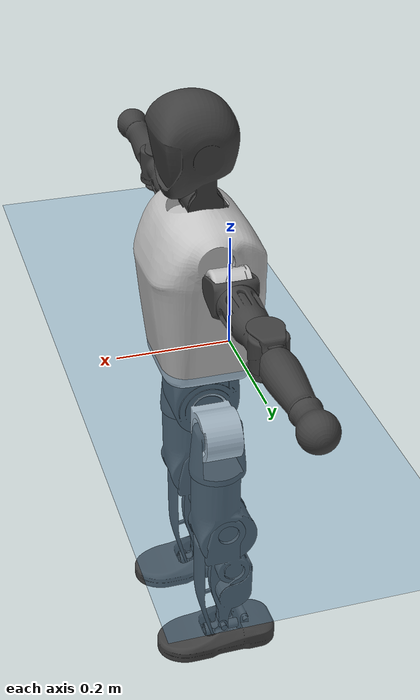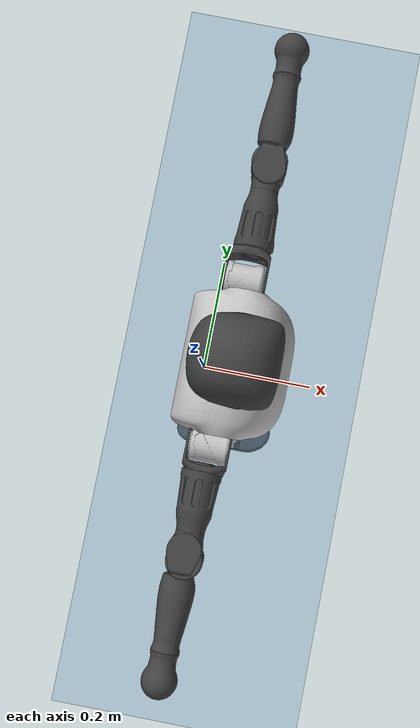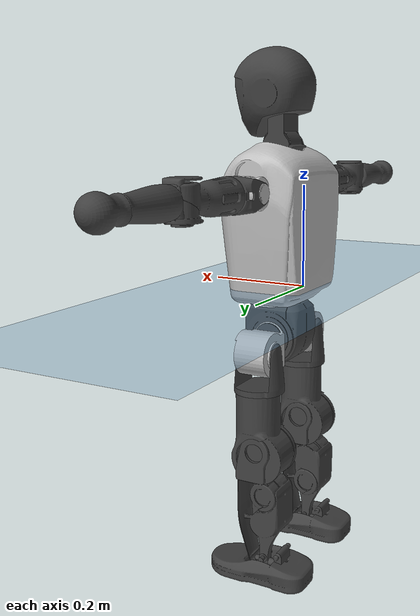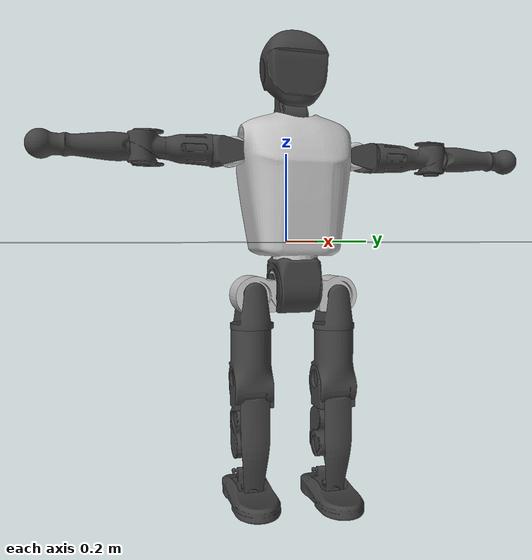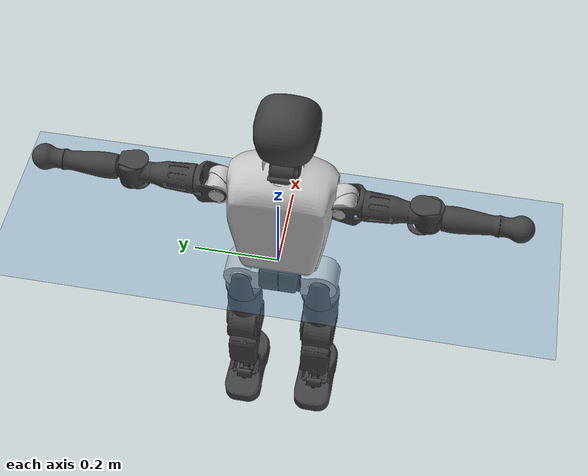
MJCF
<mujoco model="T1">
  <compiler angle="radian" assetdir="assets" balanceinertia="true" inertiafromgeom="false"/>

  <option timestep="0.005" density="1.2" viscosity="2e-05"/>

  <size nkey="1"/>

  <visual>
    <quality shadowsize="8192"/>
    <map shadowclip="0.5"/>
  </visual>

  <default>
    <default class="/">
      <joint armature="0.01" damping="0.01" frictionloss="0.1"/>
      <geom contype="0" conaffinity="0" group="1" solref="-1000 -80"/>
      <site size="0.01 0.005 0.005" group="5"/>
      <general forcelimited="true" biastype="affine" gainprm="25" biasprm="0 -25 -0.6"/>
      <default class="t1">
        <geom rgba="0.25 0.25 0.25 1"/>
        <default class="visual">
          <geom type="mesh" group="2"/>
        </default>
        <default class="collision">
          <geom group="3"/>
        </default>
        <default class="foot">
          <geom size="0.1115 0.05 0.015" type="box" condim="6" group="4" priority="1" solimp="0.015 1 0.015"/>
        </default>
        <default class="reward_collision_sphere">
          <geom group="5" rgba="1 0 0 1"/>
        </default>
      </default>
    </default>
  </default>

  <asset>
    <texture type="skybox" colorspace="auto" name="//unnamed_texture_0" builtin="gradient" rgb1="0.95 0.95 0.95" rgb2="0.95 0.95 0.95" width="100" height="600"/>
    <texture type="2d" colorspace="auto" name="texplane" builtin="checker" rgb1="0.345 0.575 0.748" rgb2="0.345 0.575 0.748" markrgb="1 1 1" width="512" height="512"/>
    <material name="MatPlane" class="/" texture="texplane" texuniform="true" texrepeat="2 2" specular="0.9"/>
    <mesh name="Trunk" class="/" file="Trunk.stl"/>
    <mesh name="H1" class="/" file="H1.stl"/>
    <mesh name="H2" class="/" file="H2.stl"/>
    <mesh name="AL1" class="/" file="AL1.stl"/>
    <mesh name="AL2" class="/" file="AL2.stl"/>
    <mesh name="AL3" class="/" file="AL3.stl"/>
    <mesh name="left_hand_link" class="/" file="left_hand_link.stl"/>
    <mesh name="AR1" class="/" file="AR1.stl"/>
    <mesh name="AR2" class="/" file="AR2.stl"/>
    <mesh name="AR3" class="/" file="AR3.stl"/>
    <mesh name="right_hand_link" class="/" file="right_hand_link.stl"/>
    <mesh name="Waist" class="/" file="Waist.stl"/>
    <mesh name="Hip_Pitch_Left" class="/" file="Hip_Pitch_Left.stl"/>
    <mesh name="Hip_Roll_Left" class="/" file="Hip_Roll_Left.stl"/>
    <mesh name="Hip_Yaw_Left" class="/" file="Hip_Yaw_Left.stl"/>
    <mesh name="Shank_Left" class="/" file="Shank_Left.stl"/>
    <mesh name="Ankle_Cross_Left" class="/" file="Ankle_Cross_Left.stl"/>
    <mesh name="left_foot_link" class="/" file="left_foot_link.stl"/>
    <mesh name="Hip_Pitch_Right" class="/" file="Hip_Pitch_Right.stl"/>
    <mesh name="Hip_Roll_Right" class="/" file="Hip_Roll_Right.stl"/>
    <mesh name="Hip_Yaw_Right" class="/" file="Hip_Yaw_Right.stl"/>
    <mesh name="Shank_Right" class="/" file="Shank_Right.stl"/>
    <mesh name="Ankle_Cross_Right" class="/" file="Ankle_Cross_Right.stl"/>
    <mesh name="right_foot_link" class="/" file="right_foot_link.stl"/>
  </asset>

  <worldbody>
    <geom name="floor" class="/" size="100 100 0.125" type="plane" group="0" material="MatPlane"/>
    <light name="toplight_shadow" class="/" pos="0 0 5" dir="0.0990148 0.0990148 -0.990148" type="directional" ambient="0.04 0.04 0.04" diffuse="0.55 0.55 0.55" specular="0.12 0.12 0.12"/>
    <light name="toplight_fill" class="/" pos="0 0 5" dir="0.0990148 0.0990148 -0.990148" type="directional" castshadow="false" ambient="0.04 0.04 0.04" diffuse="0.3 0.3 0.3" specular="0.08 0.08 0.08"/>
    <body name="trunk" childclass="t1" pos="0.0002331 -3.11464e-05 0.00277099" quat="1 0.00027085 -0.0004048 -4.95884e-05">
      <inertial pos="0.0450225 0.000558306 0.0924734" quat="0.999983 0.00477997 -0.00291805 -0.00159243" mass="7.29837" diaginertia="0.03319 0.0439468 0.0278442"/>
      <joint name="//unnamed_joint_0" type="free" armature="0" damping="0" frictionloss="0"/>
      <geom name="//unnamed_geom_1" class="visual" rgba="0.76 0.76 0.76 1" mesh="Trunk"/>
      <geom name="//unnamed_geom_2" class="collision" size="0.064901 0.0865347 0.129802" pos="0.049326 0 0.105299" type="box"/>
      <geom name="//unnamed_geom_3" class="reward_collision_sphere" size="0.0995149" pos="0.049326 0 0.0877495"/>
      <geom name="//unnamed_geom_4" class="reward_collision_sphere" size="0.0129802" pos="0.049326 0.0761979 0"/>
      <geom name="//unnamed_geom_5" class="reward_collision_sphere" size="0.0129802" pos="0.049326 -0.0761979 0"/>
      <geom name="//unnamed_geom_6" class="reward_collision_sphere" size="0.0129802" pos="0.049326 0.0959197 0.157949"/>
      <geom name="//unnamed_geom_7" class="reward_collision_sphere" size="0.0129802" pos="0.049326 -0.0959197 0.157949"/>
      <site name="imu" pos="0.0113383 -0.0136471 0.00480877" size="0.00865347"/>
      <camera name="track" pos="0 -1.79289 0" quat="0.707107 0.707107 0 0" mode="trackcom"/>
      <camera name="ego_camera" pos="0.100296 0 0.368548" quat="-0.5 -0.5 0.5 0.5"/>
      <body name="H1" pos="0.0493223 -0.00254392 0.212552" quat="1 0.000289357 -2.9935e-05 0.000859881">
        <inertial pos="-0.00163249 -0.000611441 0.051301" quat="0.763804 -0.0135259 0.00221859 0.645302" mass="0.287282" diaginertia="9.42609e-05 0.000129154 8.0922e-05"/>
        <joint name="AAHead_yaw" pos="0 0 0" axis="-0.000726471 -0.00100123 0.999999" stiffness="0.0120577" range="-1.55375 1.61338" armature="0.00845187" damping="0.00748453" frictionloss="0.0879141"/>
        <geom name="//unnamed_geom_8" class="visual" mesh="H1"/>
        <body name="H2" pos="-0.000297959 -0.00271632 0.0550832" quat="1 -9.3459e-05 9.34248e-05 0.000129845">
          <inertial pos="0.00805506 0.00345326 0.0887712" quat="0.988329 0.107625 -0.0746828 -0.0777541" mass="0.420888" diaginertia="0.000770552 0.0011133 0.000909366"/>
          <joint name="Head_pitch" pos="0 0 0" axis="0.00130428 -0.999998 -0.00174642" stiffness="0.00469862" range="-1.22611 0.397759" armature="0.00747244" damping="0" frictionloss="0.0866192"/>
          <geom name="//unnamed_geom_9" class="visual" mesh="H2"/>
          <geom name="//unnamed_geom_10" class="collision" size="0.0692277" pos="0.008221 0 0.0965244"/>
          <geom name="//unnamed_geom_11" class="reward_collision_sphere" size="0.0778812" pos="0.016442 0 0.0877495"/>
        </body>
      </body>
      <body name="AL1" pos="0.046929 0.0959971 0.190479" quat="1 -0.000284657 0.000337393 0.000158175">
        <inertial pos="0.000570917 0.0415699 0.00252513" quat="0.507406 0.48835 -0.505117 0.498909" mass="0.348918" diaginertia="0.000523605 0.000756066 0.000155429"/>
        <joint name="Left_Shoulder_Pitch" pos="0 0 0" axis="-0.00102839 0.999997 0.00208152" range="-3.36308 1.16964" armature="0.00827187" damping="0.00118676" frictionloss="0.0878505"/>
        <geom name="//unnamed_geom_12" class="visual" rgba="0.76 0.76 0.76 1" mesh="AL1"/>
        <body name="AL2" pos="0.00131232 0.0456807 -0.000703123" quat="0.999999 -0.00105666 0.00049167 0.000373545">
          <inertial pos="0.00440329 0.0334187 -0.00285627" quat="0.488124 0.510353 -0.492293 0.508844" mass="0.109794" diaginertia="0.000156747 0.00021353 9.59783e-05"/>
          <joint name="Left_Shoulder_Roll" pos="0 0 0" axis="-0.999999 -0.000415333 -0.00139067" range="-1.62179 1.75395" armature="0.00937757" damping="0" frictionloss="0.0843362"/>
          <geom name="//unnamed_geom_13" class="visual" mesh="AL2"/>
          <body name="AL3" pos="0.00372372 0.0575225 0.000156888" quat="1 0.000579274 0.000709806 -0.000187556">
            <inertial pos="-0.0016279 0.0757892 0.00027677" quat="0.716007 0.698088 0.0020239 0.00180435" mass="0.681338" diaginertia="0.00502242 0.00763518 0.000327049"/>
            <joint name="Left_Elbow_Pitch" pos="0 0 0" axis="-0.00143901 -0.999998 -0.00118485" stiffness="0.00175737" range="-2.30124 2.28038" armature="0.0087342" damping="0.00995509" frictionloss="0.088826"/>
            <geom name="//unnamed_geom_14" class="visual" mesh="AL3"/>
            <geom name="//unnamed_geom_15" class="collision" size="0.0259604 0.064901" pos="0 0.0448223 0" quat="0.707105 0.707108 0 0" type="cylinder"/>
            <geom name="//unnamed_geom_16" class="reward_collision_sphere" size="0.0311525"/>
            <body name="left_hand_link" pos="0.000682755 0.134517 0.00352135" quat="0.999999 -0.000161582 0.00124179 -0.000391884">
              <inertial pos="0.000122362 0.0971094 -0.00212511" quat="0.699902 0.714195 -0.00195291 -0.00764157" mass="0.206116" diaginertia="0.00304888 0.0046009 0.000106832"/>
              <joint name="Left_Elbow_Yaw" pos="0 0 0" axis="-0.00743272 0.0143563 0.999869" stiffness="0.000652993" range="-2.44992 0.0512665" armature="0.0087209" damping="0.00102245" frictionloss="0.0963417"/>
              <geom name="//unnamed_geom_17" class="visual" mesh="left_hand_link"/>
              <geom name="//unnamed_geom_18" class="collision" size="0.0259604 0.0757178" pos="0 0.116538 0" quat="0.707105 0.707108 0 0" type="cylinder"/>
              <geom name="//unnamed_geom_19" class="reward_collision_sphere" size="0.0432673"/>
              <geom name="//unnamed_geom_20" class="reward_collision_sphere" size="0.0302871" pos="0 0.098609 0"/>
              <geom name="//unnamed_geom_21" class="reward_collision_sphere" size="0.0302871" pos="0 0.192736 0"/>
            </body>
          </body>
        </body>
      </body>
      <body name="AR1" pos="0.0443652 -0.0916807 0.191346" quat="1 -0.000447007 0.000375504 -0.000178797">
        <inertial pos="-0.00153902 -0.0398904 -0.00135487" quat="0.50269 0.495022 -0.504624 0.497605" mass="0.35395" diaginertia="0.000518934 0.000762732 0.000153659"/>
        <joint name="Right_Shoulder_Pitch" pos="0 0 0" axis="0.00769532 -0.999959 -0.00477285" stiffness="0.0147839" range="-1.17701 3.33192" armature="0.00859204" damping="0.021462" frictionloss="0.0874684"/>
        <geom name="//unnamed_geom_22" class="visual" rgba="0.76 0.76 0.76 1" mesh="AR1"/>
        <body name="AR2" pos="-0.00268548 -0.0386636 0.000354437" quat="1 0.000485474 9.14989e-05 -0.00084538">
          <inertial pos="0.000722761 -0.03315 -0.00234837" quat="0.514759 0.481918 -0.507879 0.494809" mass="0.103252" diaginertia="0.000146909 0.000196355 9.31541e-05"/>
          <joint name="Right_Shoulder_Roll" pos="0 0 0" axis="-0.999962 0.00452894 0.00746787" stiffness="0.0116318" range="-1.70495 1.5198" armature="0.00885114" damping="0.00777296" frictionloss="0.0750197"/>
          <geom name="//unnamed_geom_23" class="visual" mesh="AR2"/>
          <body name="AR3" pos="-0.00187095 -0.0519596 0.00254888" quat="1 0.000371052 -0.000320304 5.24569e-06">
            <inertial pos="-0.000531419 -0.076078 0.000294352" quat="0.714131 0.699994 0.00489681 0.000389647" mass="0.645898" diaginertia="0.004719 0.00762361 0.00032505"/>
            <joint name="Right_Elbow_Pitch" pos="0 0 0" axis="0.000632413 0.999999 -0.000880267" stiffness="0.0109246" range="-2.2723 2.26" armature="0.00909655" damping="0.0170365" frictionloss="0.097404"/>
            <geom name="//unnamed_geom_24" class="visual" mesh="AR3"/>
            <geom name="//unnamed_geom_25" class="collision" size="0.0259604 0.064901" pos="0 -0.0448223 0" quat="0.707105 0.707108 0 0" type="cylinder"/>
            <geom name="//unnamed_geom_26" class="reward_collision_sphere" size="0.0311525"/>
            <body name="right_hand_link" pos="-0.00284639 -0.130176 -0.000467446" quat="0.999999 -0.000676463 -0.000662569 0.000461591">
              <inertial pos="-0.000871025 -0.0979927 0.00325679" quat="0.712004 0.702096 -0.0104791 0.00112147" mass="0.203038" diaginertia="0.00288236 0.00459517 0.000108937"/>
              <joint name="Right_Elbow_Yaw" pos="0 0 0" axis="-0.00380931 0.00111542 0.999992" stiffness="0.0041472" range="-0.0561327 2.4229" armature="0.00977275" damping="0.0105667" frictionloss="0.08727"/>
              <geom name="//unnamed_geom_27" class="visual" mesh="right_hand_link"/>
              <geom name="//unnamed_geom_28" class="collision" size="0.0259604 0.0757178" pos="0 -0.116538 0" quat="0.707105 0.707108 0 0" type="cylinder"/>
              <geom name="//unnamed_geom_29" class="reward_collision_sphere" size="0.0432673"/>
              <geom name="//unnamed_geom_30" class="reward_collision_sphere" size="0.0302871" pos="0 -0.098609 0"/>
              <geom name="//unnamed_geom_31" class="reward_collision_sphere" size="0.0302871" pos="0 -0.192736 0"/>
            </body>
          </body>
        </body>
      </body>
      <body name="Waist" pos="0.0518273 -0.000134452 -0.103961" quat="1 3.00762e-05 -5.02819e-06 -2.39723e-07">
        <inertial pos="0.00392121 -0.000878382 0.00599634" quat="0.982866 -0.00299348 -0.184197 0.00599214" mass="1.66419" diaginertia="0.00194415 0.00286692 0.00235075"/>
        <joint name="Waist" pos="0 0 0" axis="9.49971e-05 -0.000876647 1" stiffness="0.00103543" range="-1.52586 1.5909" armature="0.00757352" damping="0.0136721" frictionloss="0.0906604"/>
        <geom name="//unnamed_geom_32" class="visual" mesh="Waist"/>
        <body name="Hip_Pitch_Left" pos="-0.00159966 0.0971397 -0.00101619" quat="0.999999 -0.000251754 -0.000239162 0.00107479">
          <inertial pos="-0.000945349 -0.00435998 -0.0158746" quat="0.975123 0.221138 0.0152684 -0.00044297" mass="0.648874" diaginertia="0.000662047 0.000840873 0.000635794"/>
          <joint name="Left_Hip_Pitch" pos="0 0 0" axis="-0.00109479 0.999999 -0.000161496" stiffness="0.0111376" range="-1.80831 1.62165" armature="0.0087016" damping="0.0178171" frictionloss="0.0863117"/>
          <geom name="//unnamed_geom_33" class="visual" rgba="0.76 0.76 0.76 1" mesh="Hip_Pitch_Left"/>
          <body name="Hip_Roll_Left" pos="0.00165862 -0.000595386 -0.0202647" quat="0.999999 -0.000838295 0.00040813 0.000634589">
            <inertial pos="-0.000132208 -0.000344604 -0.0471088" quat="0.705988 -0.00501586 -0.00464266 0.708191" mass="0.249545" diaginertia="0.000660554 0.000852037 0.000259596"/>
            <joint name="Left_Hip_Roll" pos="0 0 0" axis="-1 0.000787885 0.000266414" range="-1.57346 0.203504" armature="0.00848404" damping="0.0164939" frictionloss="0.098541"/>
            <geom name="//unnamed_geom_34" class="visual" mesh="Hip_Roll_Left"/>
            <geom name="//unnamed_geom_35" class="reward_collision_sphere" size="0.0475941"/>
            <body name="Hip_Yaw_Left" pos="0.000483675 0.000223811 -0.0740344" quat="0.999999 0.00107726 0.000121261 -0.000178526">
              <inertial pos="-0.00529114 -0.000874789 -0.0785966" quat="0.700181 -0.0279889 -0.0226834 0.713055" mass="1.37751" diaginertia="0.00954246 0.0142579 0.00138115"/>
              <joint name="Left_Hip_Yaw" pos="0 0 0" axis="-0.00317241 0.0113533 -0.999931" range="-0.999974 0.979003" armature="0.00843041" damping="0.00912422" frictionloss="0.0862318"/>
              <geom name="//unnamed_geom_36" class="visual" mesh="Hip_Yaw_Left"/>
              <geom name="//unnamed_geom_37" class="collision" size="0.0432673 0.0692277" type="cylinder"/>
              <body name="Shank_Left" pos="-0.0118757 -0.000401255 -0.11987" quat="1 -0.000446802 -0.000246734 0.000718002">
                <inertial pos="-0.00519182 0.000990472 -0.109982" quat="0.997987 0.00453277 -0.0319537 0.054589" mass="1.14633" diaginertia="0.0128634 0.0208583 0.000986421"/>
                <joint name="Left_Knee_Pitch" pos="0 0 0" axis="-0.00182647 0.999997 0.00146631" stiffness="0.00426236" range="0.0128115 2.35143" armature="0.00866877" damping="0.0162402" frictionloss="0.0986061"/>
                <geom name="//unnamed_geom_38" class="visual" mesh="Shank_Left"/>
                <geom name="//unnamed_geom_39" class="collision" size="0.0432673 0.064901" pos="0 0 -0.105299" type="cylinder"/>
                <geom name="//unnamed_geom_40" class="reward_collision_sphere" size="0.0562475"/>
                <body name="Ankle_Cross_Left" pos="-0.00151898 -0.00114691 -0.247201" quat="0.999999 0.000720276 0.000786777 -3.06277e-05">
                  <inertial pos="-0.00188976 0.00179058 -0.0092686" quat="0.441342 0.550223 0.551907 0.444827" mass="0.0482486" diaginertia="1.1643e-05 1.48668e-05 5.93484e-06"/>
                  <joint name="Left_Ankle_Pitch" pos="0 0 0" axis="-0.0105148 0.999945 -0.000437145" range="-0.910191 0.392603" armature="0.00780551" damping="0.0144002" frictionloss="0.0984172"/>
                  <geom name="//unnamed_geom_41" class="visual" mesh="Ankle_Cross_Left"/>
                  <body name="left_foot_link" pos="0.00212073 -0.000372728 -0.0138999" quat="1 -6.28841e-05 0.000260554 -4.46435e-05">
                    <inertial pos="-0.000519812 -0.00259039 -0.00865451" quat="6.58768e-05 0.621511 -0.000465282 0.783406" mass="0.436864" diaginertia="0.00104987 0.00138759 0.00114438"/>
                    <joint name="Left_Ankle_Roll" pos="0 0 0" axis="-0.999987 0.00451837 -0.00235605" range="-0.488175 0.422323" armature="0.00856374" damping="0.00701492" frictionloss="0.0821646"/>
                    <geom name="//unnamed_geom_42" class="visual" mesh="left_foot_link"/>
                    <geom name="left_foot" class="foot" size="0.0982626 0.0426511 0.0142632" pos="0.008221 0 -0.0131624"/>
                    <geom name="//unnamed_geom_44" class="reward_collision_sphere" size="0.044998" pos="0.008221 0 -0.0131624"/>
                    <geom name="//unnamed_geom_45" class="reward_collision_sphere" size="0.0259604" pos="0.0780995 -0.0206182 -0.0131624"/>
                    <geom name="//unnamed_geom_46" class="reward_collision_sphere" size="0.0259604" pos="-0.057547 -0.0206182 -0.0131624"/>
                    <site name="left_foot" class="foot" pos="0.008221 0 -0.0131624" size="0.00865347"/>
                  </body>
                </body>
              </body>
            </body>
          </body>
        </body>
        <body name="Hip_Pitch_Right" pos="-0.000918382 -0.0961721 0.00181622" quat="0.999999 0.000633679 0.000751428 -0.000836608">
          <inertial pos="0.000401783 0.00693209 -0.0130853" quat="0.972345 -0.232937 0.0144264 0.00882047" mass="0.659466" diaginertia="0.000675885 0.000848147 0.00067053"/>
          <joint name="Right_Hip_Pitch" pos="0 0 0" axis="0.0132007 -0.999911 0.00204334" range="-1.58091 1.81461" armature="0.00976316" damping="0.0102236" frictionloss="0.0953961"/>
          <geom name="//unnamed_geom_47" class="visual" rgba="0.76 0.76 0.76 1" mesh="Hip_Pitch_Right"/>
          <body name="Hip_Roll_Right" pos="0.000964763 -0.0013605 -0.0150397" quat="0.999999 0.000699721 0.000129549 -0.000841139">
            <inertial pos="0.00355124 1.32554e-05 -0.0495426" quat="0.699612 0.00248694 -0.00286469 0.714513" mass="0.240811" diaginertia="0.000611816 0.000844399 0.000257672"/>
            <joint name="Right_Hip_Roll" pos="0 0 0" axis="-0.999992 -0.00202611 -0.00334562" stiffness="0.00900457" range="-0.189433 1.62896" armature="0.00825435" damping="0.00531782" frictionloss="0.0859064"/>
            <geom name="//unnamed_geom_48" class="visual" mesh="Hip_Roll_Right"/>
            <geom name="//unnamed_geom_49" class="reward_collision_sphere" size="0.0475941"/>
            <body name="Hip_Yaw_Right" pos="-7.00202e-05 -0.00257891 -0.0713015" quat="0.999999 0.000227849 0.00114573 -0.000887243">
              <inertial pos="-0.00294384 0.000628423 -0.0782212" quat="0.722878 -0.0314757 -0.0362449 0.689306" mass="1.46697" diaginertia="0.0103359 0.015559 0.00142496"/>
              <joint name="Right_Hip_Yaw" pos="0 0 0" axis="0.0034609 0.00812525 -0.999961" range="-1.01774 0.963744" armature="0.00882309" damping="0.00531972" frictionloss="0.0750475"/>
              <geom name="//unnamed_geom_50" class="visual" mesh="Hip_Yaw_Right"/>
              <geom name="//unnamed_geom_51" class="collision" size="0.0432673 0.0692277" type="cylinder"/>
              <body name="Shank_Right" pos="-0.0140364 0.00217021 -0.118753" quat="0.999999 0.000978433 0.000800929 -0.000117981">
                <inertial pos="-0.00213832 0.00170978 -0.106529" quat="0.999253 0.00139405 -0.0237207 -0.0304678" mass="1.20848" diaginertia="0.0132149 0.0198018 0.00100065"/>
                <joint name="Right_Knee_Pitch" pos="0 0 0" axis="0.00123992 -0.999991 -0.00416982" stiffness="0.0084011" range="-2.33507 -0.0160036" armature="0.00828586" damping="0.0196625" frictionloss="0.0919559"/>
                <geom name="//unnamed_geom_52" class="visual" mesh="Shank_Right"/>
                <geom name="//unnamed_geom_53" class="collision" size="0.0432673 0.064901" pos="0 0 -0.105299" type="cylinder"/>
                <geom name="//unnamed_geom_54" class="reward_collision_sphere" size="0.0562475"/>
                <body name="Ankle_Cross_Right" pos="-0.00159528 -0.00174659 -0.247894" quat="0.999999 0.00126511 0.000354002 -0.00052039">
                  <inertial pos="-0.00296516 0.000506636 -0.00704493" quat="0.439083 0.551174 0.550735 0.44733" mass="0.0441831" diaginertia="1.05286e-05 1.43449e-05 5.781e-06"/>
                  <joint name="Right_Ankle_Pitch" pos="0 0 0" axis="-0.0108889 -0.999937 -0.00275497" range="-0.352481 0.817628" armature="0.00984946" damping="0" frictionloss="0.0769762"/>
                  <geom name="//unnamed_geom_55" class="visual" mesh="Ankle_Cross_Right"/>
                  <body name="right_foot_link" pos="0.00232305 -0.00146059 -0.0080399" quat="1 -0.000638962 -0.00055001 0.000522258">
                    <inertial pos="-0.000436047 0.000272405 -0.0107209" quat="-0.00419211 0.620849 -0.00330999 0.783912" mass="0.464723" diaginertia="0.000992415 0.00137894 0.00113039"/>
                    <joint name="Right_Ankle_Roll" pos="0 0 0" axis="-0.999891 0.00768028 -0.0126113" range="-0.395047 0.47164" armature="0.00736512" damping="0.00520443" frictionloss="0.0828056"/>
                    <geom name="//unnamed_geom_56" class="visual" mesh="right_foot_link"/>
                    <geom name="right_foot" class="foot" size="0.095939 0.0441448 0.0134392" pos="0.008221 0 -0.0131624"/>
                    <geom name="//unnamed_geom_58" class="reward_collision_sphere" size="0.0346139"/>
                    <geom name="//unnamed_geom_59" class="reward_collision_sphere" size="0.0259604" pos="0.008221 0 -0.0131624"/>
                    <geom name="//unnamed_geom_60" class="reward_collision_sphere" size="0.0259604" pos="0.0780995 0.0206182 -0.0131624"/>
                    <geom name="//unnamed_geom_61" class="reward_collision_sphere" size="0.0259604" pos="-0.057547 0.0206182 -0.0131624"/>
                    <site name="right_foot" class="foot" pos="0.008221 0 -0.0131624" size="0.00865347"/>
                  </body>
                </body>
              </body>
            </body>
          </body>
        </body>
      </body>
    </body>
  </worldbody>

  <contact>
    <pair class="/" geom1="floor" geom2="left_foot" name="//unnamed_contact_0"/>
    <pair class="/" geom1="floor" geom2="right_foot" name="//unnamed_contact_1"/>
  </contact>

  <actuator>
    <general name="AAHead_yaw" class="/" joint="AAHead_yaw" forcerange="-5.71069 5.71069" gainprm="23.4312" biasprm="0 -23.4312 -0.52565"/>
    <general name="Head_pitch" class="/" joint="Head_pitch" forcerange="-5.81811 5.81811" gainprm="23.4312" biasprm="0 -23.4312 -0.52565"/>
    <general name="Left_Shoulder_Pitch" class="/" joint="Left_Shoulder_Pitch" forcerange="-15.1459 15.1459" gainprm="23.4312" biasprm="0 -23.4312 -0.52565"/>
    <general name="Left_Shoulder_Roll" class="/" joint="Left_Shoulder_Roll" forcerange="-15.3565 15.3565" gainprm="23.4312" biasprm="0 -23.4312 -0.52565"/>
    <general name="Left_Elbow_Pitch" class="/" joint="Left_Elbow_Pitch" forcerange="-17.2703 17.2703" gainprm="23.4312" biasprm="0 -23.4312 -0.52565"/>
    <general name="Left_Elbow_Yaw" class="/" joint="Left_Elbow_Yaw" forcerange="-16.247 16.247" gainprm="23.4312" biasprm="0 -23.4312 -0.52565"/>
    <general name="Right_Shoulder_Pitch" class="/" joint="Right_Shoulder_Pitch" forcerange="-15.233 15.233" gainprm="23.4312" biasprm="0 -23.4312 -0.52565"/>
    <general name="Right_Shoulder_Roll" class="/" joint="Right_Shoulder_Roll" forcerange="-15.7029 15.7029" gainprm="23.4312" biasprm="0 -23.4312 -0.52565"/>
    <general name="Right_Elbow_Pitch" class="/" joint="Right_Elbow_Pitch" forcerange="-15.6692 15.6692" gainprm="23.4312" biasprm="0 -23.4312 -0.52565"/>
    <general name="Right_Elbow_Yaw" class="/" joint="Right_Elbow_Yaw" forcerange="-17.1185 17.1185" gainprm="23.4312" biasprm="0 -23.4312 -0.52565"/>
    <general name="Waist" class="/" joint="Waist" forcerange="-27.5366 27.5366" gainprm="23.4312" biasprm="0 -23.4312 -0.52565"/>
    <general name="Left_Hip_Pitch" class="/" joint="Left_Hip_Pitch" forcerange="-35.6457 35.6457" gainprm="23.4312" biasprm="0 -23.4312 -0.52565"/>
    <general name="Left_Hip_Roll" class="/" joint="Left_Hip_Roll" forcerange="-25.1465 25.1465" gainprm="23.4312" biasprm="0 -23.4312 -0.52565"/>
    <general name="Left_Hip_Yaw" class="/" joint="Left_Hip_Yaw" forcerange="-26.2374 26.2374" gainprm="23.4312" biasprm="0 -23.4312 -0.52565"/>
    <general name="Left_Knee_Pitch" class="/" joint="Left_Knee_Pitch" forcerange="-56.8413 56.8413" gainprm="23.4312" biasprm="0 -23.4312 -0.52565"/>
    <general name="Left_Ankle_Pitch" class="/" joint="Left_Ankle_Pitch" forcerange="-16.6331 16.6331" gainprm="23.4312" biasprm="0 -23.4312 -0.52565"/>
    <general name="Left_Ankle_Roll" class="/" joint="Left_Ankle_Roll" forcerange="-13.0719 13.0719" gainprm="23.4312" biasprm="0 -23.4312 -0.52565"/>
    <general name="Right_Hip_Pitch" class="/" joint="Right_Hip_Pitch" forcerange="-42.6657 42.6657" gainprm="23.4312" biasprm="0 -23.4312 -0.52565"/>
    <general name="Right_Hip_Roll" class="/" joint="Right_Hip_Roll" forcerange="-25.2324 25.2324" gainprm="23.4312" biasprm="0 -23.4312 -0.52565"/>
    <general name="Right_Hip_Yaw" class="/" joint="Right_Hip_Yaw" forcerange="-26.1722 26.1722" gainprm="23.4312" biasprm="0 -23.4312 -0.52565"/>
    <general name="Right_Knee_Pitch" class="/" joint="Right_Knee_Pitch" forcerange="-56.5925 56.5925" gainprm="23.4312" biasprm="0 -23.4312 -0.52565"/>
    <general name="Right_Ankle_Pitch" class="/" joint="Right_Ankle_Pitch" forcerange="-16.444 16.444" gainprm="23.4312" biasprm="0 -23.4312 -0.52565"/>
    <general name="Right_Ankle_Roll" class="/" joint="Right_Ankle_Roll" forcerange="-11.7683 11.7683" gainprm="23.4312" biasprm="0 -23.4312 -0.52565"/>
  </actuator>

  <sensor>
    <gyro site="imu" name="imu_angular_velocity"/>
    <velocimeter site="imu" name="imu_linear_velocity"/>
    <framelinvel objtype="site" objname="left_foot" name="left_foot_global_linear_velocity"/>
    <framelinvel objtype="site" objname="right_foot" name="right_foot_global_linear_velocity"/>
  </sensor>

  <keyframe>
    <key name="home" qpos="0 0 0.6385 1 0 0 0 0 0 0 1.4 0 -0.4 0 -1.4 0 0.4 0 -0.4 0 0 0.8 -0.4 0 0.4 0 0 -0.8 0.4 0"/>
  </keyframe>
</mujoco>
